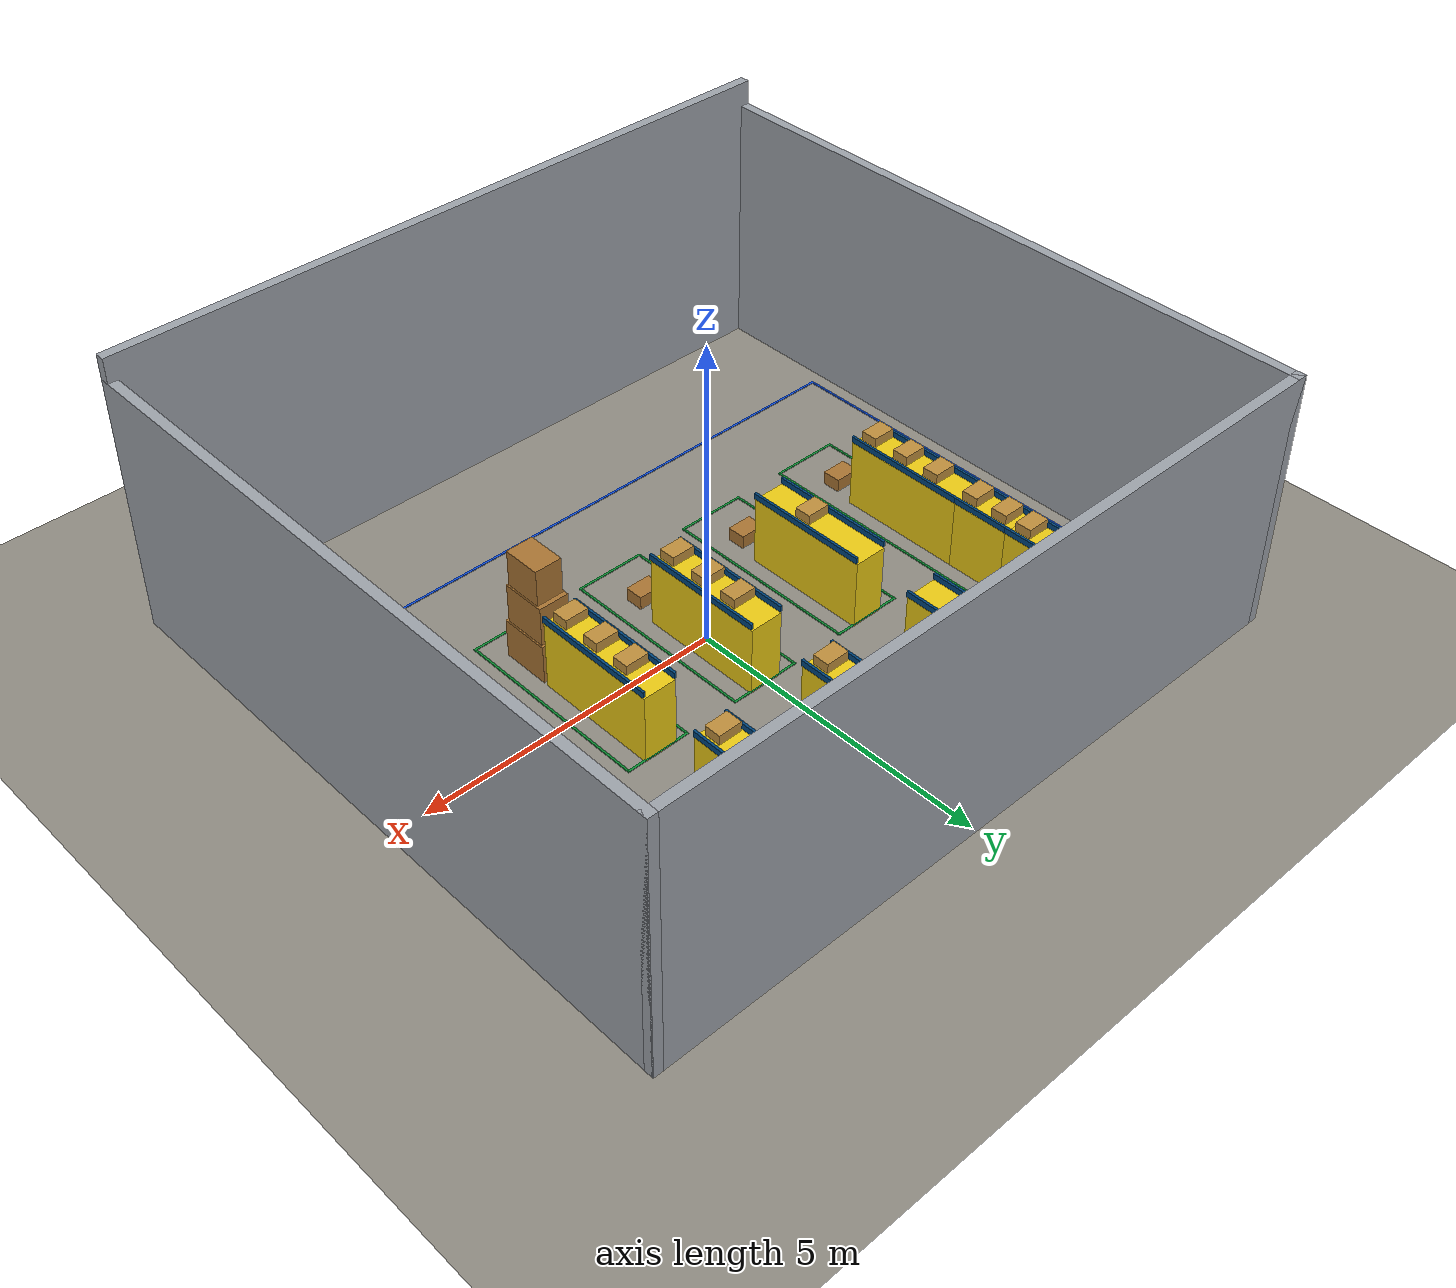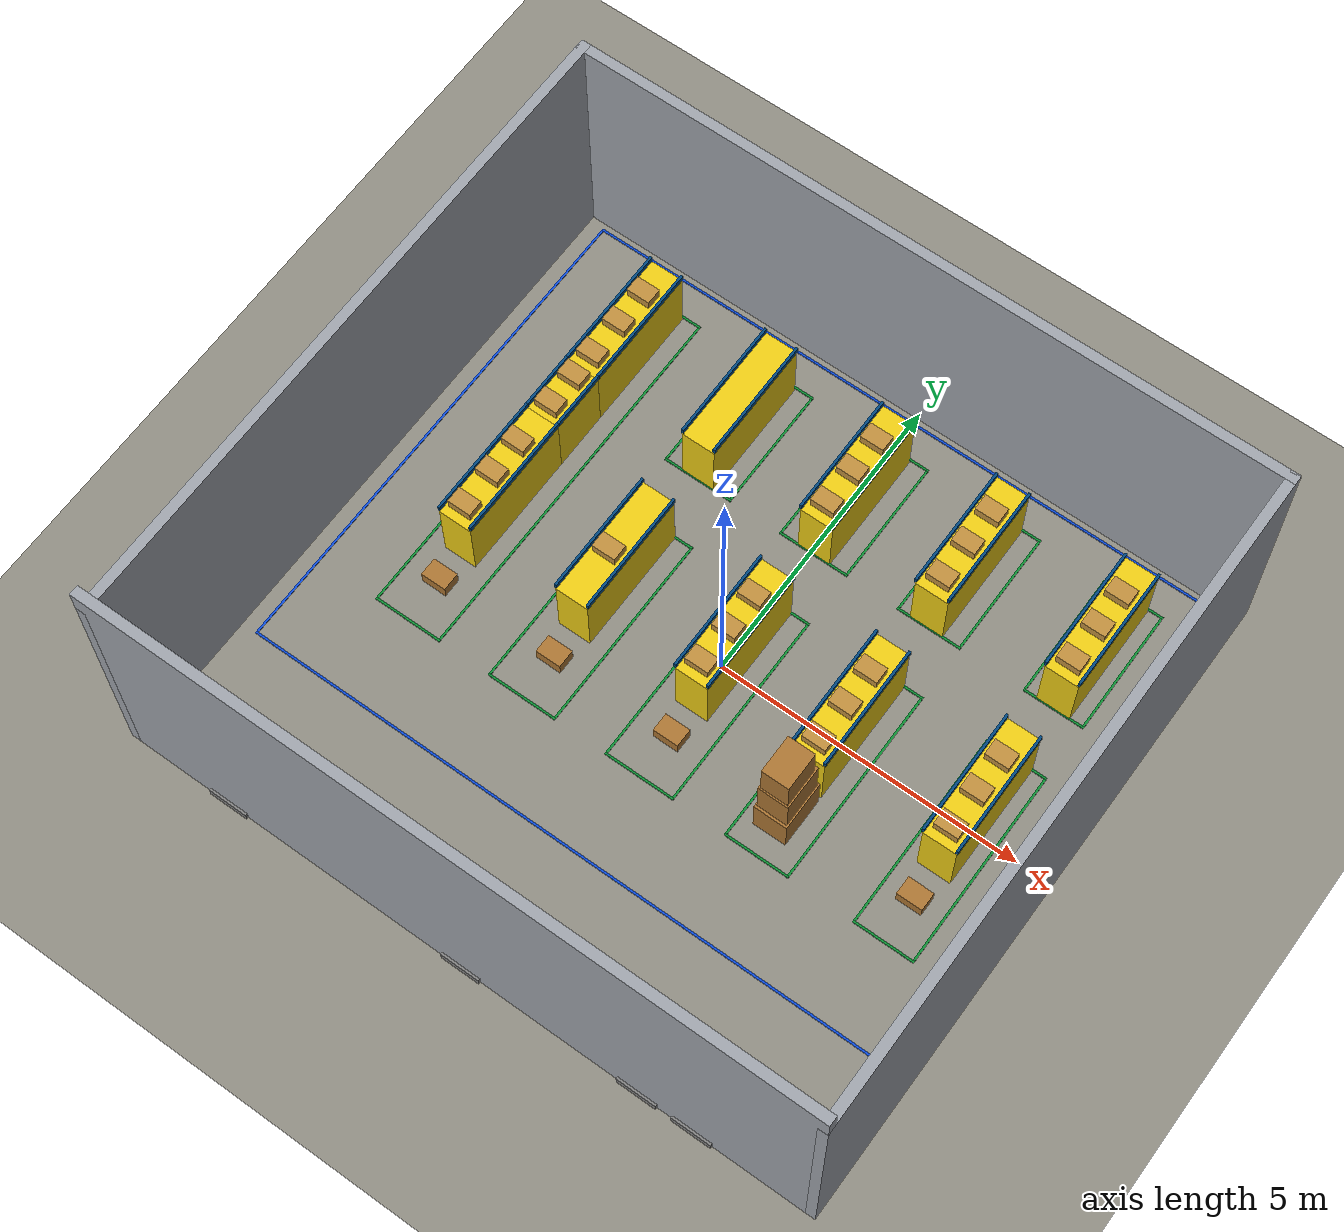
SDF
<sdf version="1.8">
 <world name="warehouse_aws_2cam">
  <physics name="default_physics" type="ode">
   <max_step_size>0.001</max_step_size>
   <real_time_factor>1.0</real_time_factor>
   <real_time_update_rate>1000</real_time_update_rate>
  </physics>
  <plugin name="gz::sim::systems::Physics" filename="gz-sim-physics-system"/>
  <plugin name="gz::sim::systems::UserCommands" filename="gz-sim-user-commands-system"/>
  <plugin name="gz::sim::systems::SceneBroadcaster" filename="gz-sim-scene-broadcaster-system"/>
  <plugin name="gz::sim::systems::Contact" filename="gz-sim-contact-system"/>
  <plugin name="gz::sim::systems::Sensors" filename="gz-sim-sensors-system">
   <render_engine>ogre2</render_engine>
  </plugin>
  <gravity>0 0 -9.81</gravity>
  <magnetic_field>6e-06 2.3e-05 -4.2e-05</magnetic_field>
  <atmosphere type="adiabatic"/>
  <scene>
   <ambient>0.58 0.58 0.58 1</ambient>
   <background>0.70 0.72 0.74 1</background>
   <shadows>true</shadows>
  </scene>
  <model name="ground_plane">
   <static>true</static>
   <link name="link">
    <collision name="collision">
     <geometry><plane><normal>0 0 1</normal><size>12.0 10.0</size></plane></geometry>
    </collision>
    <visual name="visual">
     <geometry><plane><normal>0 0 1</normal><size>12.0 10.0</size></plane></geometry>
     <material>
      <ambient>0.56 0.55 0.51 1</ambient>
      <diffuse>0.56 0.55 0.51 1</diffuse>
      <specular>0.05 0.05 0.05 1</specular>
     </material>
    </visual>
   </link>
  </model>
  <model name="warehouse_walls">
   <static>true</static>
   <link name="wall_east">
    <pose>5.5 -0.30 2.125 0 0 0</pose>
    <collision name="collision"><geometry><box><size>0.16 10.76 4.25</size></box></geometry></collision>
    <sensor name="contact" type="contact">
     <contact><collision>collision</collision></contact>
     <update_rate>60</update_rate>
    </sensor>
    <visual name="visual">
     <geometry><box><size>0.16 10.76 4.25</size></box></geometry>
     <material><ambient>0.62 0.64 0.67 1</ambient><diffuse>0.62 0.64 0.67 1</diffuse></material>
    </visual>
   </link>
   <link name="wall_west">
    <pose>-6.0 -0.30 2.125 0 0 0</pose>
    <collision name="collision"><geometry><box><size>0.16 10.76 4.25</size></box></geometry></collision>
    <sensor name="contact" type="contact">
     <contact><collision>collision</collision></contact>
     <update_rate>60</update_rate>
    </sensor>
    <visual name="visual">
     <geometry><box><size>0.16 10.76 4.25</size></box></geometry>
     <material><ambient>0.62 0.64 0.67 1</ambient><diffuse>0.62 0.64 0.67 1</diffuse></material>
    </visual>
   </link>
   <link name="wall_north">
    <pose>-0.25 5.0 2.125 0 0 0</pose>
    <collision name="collision"><geometry><box><size>11.66 0.16 4.25</size></box></geometry></collision>
    <sensor name="contact" type="contact">
     <contact><collision>collision</collision></contact>
     <update_rate>60</update_rate>
    </sensor>
    <visual name="visual">
     <geometry><box><size>11.66 0.16 4.25</size></box></geometry>
     <material><ambient>0.62 0.64 0.67 1</ambient><diffuse>0.62 0.64 0.67 1</diffuse></material>
    </visual>
   </link>
   <link name="wall_south">
    <pose>-0.25 -5.6 2.325 0 0 0</pose>
    <collision name="collision"><geometry><box><size>11.66 0.16 4.65</size></box></geometry></collision>
    <sensor name="contact" type="contact">
     <contact><collision>collision</collision></contact>
     <update_rate>60</update_rate>
    </sensor>
    <visual name="visual">
     <geometry><box><size>11.66 0.16 4.65</size></box></geometry>
     <material><ambient>0.62 0.64 0.67 1</ambient><diffuse>0.62 0.64 0.67 1</diffuse></material>
    </visual>
   </link>
   <link name="dock_left">
    <pose>-4.3 -5.69 0.075 0 0 0</pose>
    <visual name="visual">
     <geometry><box><size>0.65 0.055 0.15</size></box></geometry>
     <material><ambient>0.50 0.50 0.50 1</ambient><diffuse>0.50 0.50 0.50 1</diffuse></material>
    </visual>
   </link>
   <link name="dock_receiving">
    <pose>-0.25 -5.69 0.075 0 0 0</pose>
    <visual name="visual">
     <geometry><box><size>0.65 0.055 0.15</size></box></geometry>
     <material><ambient>0.50 0.50 0.50 1</ambient><diffuse>0.50 0.50 0.50 1</diffuse></material>
    </visual>
   </link>
   <link name="dock_shipping_a">
    <pose>2.7 -5.69 0.075 0 0 0</pose>
    <visual name="visual">
     <geometry><box><size>0.65 0.055 0.15</size></box></geometry>
     <material><ambient>0.50 0.50 0.50 1</ambient><diffuse>0.50 0.50 0.50 1</diffuse></material>
    </visual>
   </link>
   <link name="dock_shipping_b">
    <pose>3.6 -5.69 0.075 0 0 0</pose>
    <visual name="visual">
     <geometry><box><size>0.65 0.055 0.15</size></box></geometry>
     <material><ambient>0.50 0.50 0.50 1</ambient><diffuse>0.50 0.50 0.50 1</diffuse></material>
    </visual>
   </link>
  </model>
  <model name="warehouse_rack_occluders">
   <static>true</static>
   <link name="rack_R1_lower">
    <pose>-4.050 0.225 0.575 0 0 0</pose>
    <collision name="collision"><geometry><box><size>0.550 2.050 1.15</size></box></geometry></collision>
    <sensor name="contact" type="contact">
     <contact><collision>collision</collision></contact>
     <update_rate>60</update_rate>
    </sensor>
    <visual name="visual">
     <geometry><box><size>0.550 2.050 1.15</size></box></geometry>
     <material><ambient>0.93 0.80 0.08 1</ambient><diffuse>0.93 0.80 0.08 1</diffuse></material>
    </visual>
   </link>
   <link name="rail_R1_lower_west">
    <pose>-4.325 0.225 1.22 0 0 0</pose>
    <visual name="visual">
     <geometry><box><size>0.040 2.050 0.10</size></box></geometry>
     <material><ambient>0.00 0.28 0.50 1</ambient><diffuse>0.00 0.28 0.50 1</diffuse></material>
    </visual>
   </link>
   <link name="rail_R1_lower_east">
    <pose>-3.775 0.225 1.22 0 0 0</pose>
    <visual name="visual">
     <geometry><box><size>0.040 2.050 0.10</size></box></geometry>
     <material><ambient>0.00 0.28 0.50 1</ambient><diffuse>0.00 0.28 0.50 1</diffuse></material>
    </visual>
   </link>
   <link name="shelf_box_R1_lower_0">
    <pose>-4.050 -0.550 1.30 0 0 0</pose>
    <visual name="visual">
     <geometry><box><size>0.390 0.27 0.16</size></box></geometry>
     <material><ambient>0.75 0.56 0.24 1</ambient><diffuse>0.75 0.56 0.24 1</diffuse></material>
    </visual>
   </link>
   <link name="shelf_box_R1_lower_1">
    <pose>-4.050 0.080 1.30 0 0 0</pose>
    <visual name="visual">
     <geometry><box><size>0.390 0.27 0.16</size></box></geometry>
     <material><ambient>0.75 0.56 0.24 1</ambient><diffuse>0.75 0.56 0.24 1</diffuse></material>
    </visual>
   </link>
   <link name="shelf_box_R1_lower_2">
    <pose>-4.050 0.680 1.30 0 0 0</pose>
    <visual name="visual">
     <geometry><box><size>0.390 0.27 0.16</size></box></geometry>
     <material><ambient>0.75 0.56 0.24 1</ambient><diffuse>0.75 0.56 0.24 1</diffuse></material>
    </visual>
   </link>
   <link name="rack_R1_upper">
    <pose>-4.050 3.225 0.575 0 0 0</pose>
    <collision name="collision"><geometry><box><size>0.550 2.050 1.15</size></box></geometry></collision>
    <sensor name="contact" type="contact">
     <contact><collision>collision</collision></contact>
     <update_rate>60</update_rate>
    </sensor>
    <visual name="visual">
     <geometry><box><size>0.550 2.050 1.15</size></box></geometry>
     <material><ambient>0.93 0.80 0.08 1</ambient><diffuse>0.93 0.80 0.08 1</diffuse></material>
    </visual>
   </link>
   <link name="rail_R1_upper_west">
    <pose>-4.325 3.225 1.22 0 0 0</pose>
    <visual name="visual">
     <geometry><box><size>0.040 2.050 0.10</size></box></geometry>
     <material><ambient>0.00 0.28 0.50 1</ambient><diffuse>0.00 0.28 0.50 1</diffuse></material>
    </visual>
   </link>
   <link name="rail_R1_upper_east">
    <pose>-3.775 3.225 1.22 0 0 0</pose>
    <visual name="visual">
     <geometry><box><size>0.040 2.050 0.10</size></box></geometry>
     <material><ambient>0.00 0.28 0.50 1</ambient><diffuse>0.00 0.28 0.50 1</diffuse></material>
    </visual>
   </link>
   <link name="shelf_box_R1_upper_0">
    <pose>-4.050 2.450 1.30 0 0 0</pose>
    <visual name="visual">
     <geometry><box><size>0.390 0.27 0.16</size></box></geometry>
     <material><ambient>0.75 0.56 0.24 1</ambient><diffuse>0.75 0.56 0.24 1</diffuse></material>
    </visual>
   </link>
   <link name="shelf_box_R1_upper_1">
    <pose>-4.050 3.080 1.30 0 0 0</pose>
    <visual name="visual">
     <geometry><box><size>0.390 0.27 0.16</size></box></geometry>
     <material><ambient>0.75 0.56 0.24 1</ambient><diffuse>0.75 0.56 0.24 1</diffuse></material>
    </visual>
   </link>
   <link name="shelf_box_R1_upper_2">
    <pose>-4.050 3.680 1.30 0 0 0</pose>
    <visual name="visual">
     <geometry><box><size>0.390 0.27 0.16</size></box></geometry>
     <material><ambient>0.75 0.56 0.24 1</ambient><diffuse>0.75 0.56 0.24 1</diffuse></material>
    </visual>
   </link>
   <link name="rack_R1_mid">
    <pose>-4.050 1.725 0.575 0 0 0</pose>
    <collision name="collision"><geometry><box><size>0.550 0.950 1.15</size></box></geometry></collision>
    <sensor name="contact" type="contact">
     <contact><collision>collision</collision></contact>
     <update_rate>60</update_rate>
    </sensor>
    <visual name="visual">
     <geometry><box><size>0.550 0.950 1.15</size></box></geometry>
     <material><ambient>0.93 0.80 0.08 1</ambient><diffuse>0.93 0.80 0.08 1</diffuse></material>
    </visual>
   </link>
   <link name="rail_R1_mid_west">
    <pose>-4.325 1.725 1.22 0 0 0</pose>
    <visual name="visual">
     <geometry><box><size>0.040 0.950 0.10</size></box></geometry>
     <material><ambient>0.00 0.28 0.50 1</ambient><diffuse>0.00 0.28 0.50 1</diffuse></material>
    </visual>
   </link>
   <link name="rail_R1_mid_east">
    <pose>-3.775 1.725 1.22 0 0 0</pose>
    <visual name="visual">
     <geometry><box><size>0.040 0.950 0.10</size></box></geometry>
     <material><ambient>0.00 0.28 0.50 1</ambient><diffuse>0.00 0.28 0.50 1</diffuse></material>
    </visual>
   </link>
   <link name="shelf_box_R1_mid_0">
    <pose>-4.050 1.450 1.30 0 0 0</pose>
    <visual name="visual">
     <geometry><box><size>0.390 0.27 0.16</size></box></geometry>
     <material><ambient>0.75 0.56 0.24 1</ambient><diffuse>0.75 0.56 0.24 1</diffuse></material>
    </visual>
   </link>
   <link name="shelf_box_R1_mid_1">
    <pose>-4.050 2.000 1.30 0 0 0</pose>
    <visual name="visual">
     <geometry><box><size>0.390 0.27 0.16</size></box></geometry>
     <material><ambient>0.75 0.56 0.24 1</ambient><diffuse>0.75 0.56 0.24 1</diffuse></material>
    </visual>
   </link>
   <link name="rack_R2_lower">
    <pose>-2.000 0.225 0.575 0 0 0</pose>
    <collision name="collision"><geometry><box><size>0.550 2.050 1.15</size></box></geometry></collision>
    <sensor name="contact" type="contact">
     <contact><collision>collision</collision></contact>
     <update_rate>60</update_rate>
    </sensor>
    <visual name="visual">
     <geometry><box><size>0.550 2.050 1.15</size></box></geometry>
     <material><ambient>0.93 0.80 0.08 1</ambient><diffuse>0.93 0.80 0.08 1</diffuse></material>
    </visual>
   </link>
   <link name="rail_R2_lower_west">
    <pose>-2.275 0.225 1.22 0 0 0</pose>
    <visual name="visual">
     <geometry><box><size>0.040 2.050 0.10</size></box></geometry>
     <material><ambient>0.00 0.28 0.50 1</ambient><diffuse>0.00 0.28 0.50 1</diffuse></material>
    </visual>
   </link>
   <link name="rail_R2_lower_east">
    <pose>-1.725 0.225 1.22 0 0 0</pose>
    <visual name="visual">
     <geometry><box><size>0.040 2.050 0.10</size></box></geometry>
     <material><ambient>0.00 0.28 0.50 1</ambient><diffuse>0.00 0.28 0.50 1</diffuse></material>
    </visual>
   </link>
   <link name="shelf_box_R2_lower_1">
    <pose>-2.000 0.080 1.30 0 0 0</pose>
    <visual name="visual">
     <geometry><box><size>0.390 0.27 0.16</size></box></geometry>
     <material><ambient>0.75 0.56 0.24 1</ambient><diffuse>0.75 0.56 0.24 1</diffuse></material>
    </visual>
   </link>
   <link name="rack_R2_upper">
    <pose>-2.000 3.225 0.575 0 0 0</pose>
    <collision name="collision"><geometry><box><size>0.550 2.050 1.15</size></box></geometry></collision>
    <sensor name="contact" type="contact">
     <contact><collision>collision</collision></contact>
     <update_rate>60</update_rate>
    </sensor>
    <visual name="visual">
     <geometry><box><size>0.550 2.050 1.15</size></box></geometry>
     <material><ambient>0.93 0.80 0.08 1</ambient><diffuse>0.93 0.80 0.08 1</diffuse></material>
    </visual>
   </link>
   <link name="rail_R2_upper_west">
    <pose>-2.275 3.225 1.22 0 0 0</pose>
    <visual name="visual">
     <geometry><box><size>0.040 2.050 0.10</size></box></geometry>
     <material><ambient>0.00 0.28 0.50 1</ambient><diffuse>0.00 0.28 0.50 1</diffuse></material>
    </visual>
   </link>
   <link name="rail_R2_upper_east">
    <pose>-1.725 3.225 1.22 0 0 0</pose>
    <visual name="visual">
     <geometry><box><size>0.040 2.050 0.10</size></box></geometry>
     <material><ambient>0.00 0.28 0.50 1</ambient><diffuse>0.00 0.28 0.50 1</diffuse></material>
    </visual>
   </link>
   <link name="rack_R3_lower">
    <pose>0.050 0.225 0.575 0 0 0</pose>
    <collision name="collision"><geometry><box><size>0.550 2.050 1.15</size></box></geometry></collision>
    <sensor name="contact" type="contact">
     <contact><collision>collision</collision></contact>
     <update_rate>60</update_rate>
    </sensor>
    <visual name="visual">
     <geometry><box><size>0.550 2.050 1.15</size></box></geometry>
     <material><ambient>0.93 0.80 0.08 1</ambient><diffuse>0.93 0.80 0.08 1</diffuse></material>
    </visual>
   </link>
   <link name="rail_R3_lower_west">
    <pose>-0.225 0.225 1.22 0 0 0</pose>
    <visual name="visual">
     <geometry><box><size>0.040 2.050 0.10</size></box></geometry>
     <material><ambient>0.00 0.28 0.50 1</ambient><diffuse>0.00 0.28 0.50 1</diffuse></material>
    </visual>
   </link>
   <link name="rail_R3_lower_east">
    <pose>0.325 0.225 1.22 0 0 0</pose>
    <visual name="visual">
     <geometry><box><size>0.040 2.050 0.10</size></box></geometry>
     <material><ambient>0.00 0.28 0.50 1</ambient><diffuse>0.00 0.28 0.50 1</diffuse></material>
    </visual>
   </link>
   <link name="shelf_box_R3_lower_0">
    <pose>0.050 -0.550 1.30 0 0 0</pose>
    <visual name="visual">
     <geometry><box><size>0.390 0.27 0.16</size></box></geometry>
     <material><ambient>0.75 0.56 0.24 1</ambient><diffuse>0.75 0.56 0.24 1</diffuse></material>
    </visual>
   </link>
   <link name="shelf_box_R3_lower_1">
    <pose>0.050 0.080 1.30 0 0 0</pose>
    <visual name="visual">
     <geometry><box><size>0.390 0.27 0.16</size></box></geometry>
     <material><ambient>0.75 0.56 0.24 1</ambient><diffuse>0.75 0.56 0.24 1</diffuse></material>
    </visual>
   </link>
   <link name="shelf_box_R3_lower_2">
    <pose>0.050 0.680 1.30 0 0 0</pose>
    <visual name="visual">
     <geometry><box><size>0.390 0.27 0.16</size></box></geometry>
     <material><ambient>0.75 0.56 0.24 1</ambient><diffuse>0.75 0.56 0.24 1</diffuse></material>
    </visual>
   </link>
   <link name="rack_R3_upper">
    <pose>0.050 3.225 0.575 0 0 0</pose>
    <collision name="collision"><geometry><box><size>0.550 2.050 1.15</size></box></geometry></collision>
    <sensor name="contact" type="contact">
     <contact><collision>collision</collision></contact>
     <update_rate>60</update_rate>
    </sensor>
    <visual name="visual">
     <geometry><box><size>0.550 2.050 1.15</size></box></geometry>
     <material><ambient>0.93 0.80 0.08 1</ambient><diffuse>0.93 0.80 0.08 1</diffuse></material>
    </visual>
   </link>
   <link name="rail_R3_upper_west">
    <pose>-0.225 3.225 1.22 0 0 0</pose>
    <visual name="visual">
     <geometry><box><size>0.040 2.050 0.10</size></box></geometry>
     <material><ambient>0.00 0.28 0.50 1</ambient><diffuse>0.00 0.28 0.50 1</diffuse></material>
    </visual>
   </link>
   <link name="rail_R3_upper_east">
    <pose>0.325 3.225 1.22 0 0 0</pose>
    <visual name="visual">
     <geometry><box><size>0.040 2.050 0.10</size></box></geometry>
     <material><ambient>0.00 0.28 0.50 1</ambient><diffuse>0.00 0.28 0.50 1</diffuse></material>
    </visual>
   </link>
   <link name="shelf_box_R3_upper_0">
    <pose>0.050 2.450 1.30 0 0 0</pose>
    <visual name="visual">
     <geometry><box><size>0.390 0.27 0.16</size></box></geometry>
     <material><ambient>0.75 0.56 0.24 1</ambient><diffuse>0.75 0.56 0.24 1</diffuse></material>
    </visual>
   </link>
   <link name="shelf_box_R3_upper_1">
    <pose>0.050 3.080 1.30 0 0 0</pose>
    <visual name="visual">
     <geometry><box><size>0.390 0.27 0.16</size></box></geometry>
     <material><ambient>0.75 0.56 0.24 1</ambient><diffuse>0.75 0.56 0.24 1</diffuse></material>
    </visual>
   </link>
   <link name="shelf_box_R3_upper_2">
    <pose>0.050 3.680 1.30 0 0 0</pose>
    <visual name="visual">
     <geometry><box><size>0.390 0.27 0.16</size></box></geometry>
     <material><ambient>0.75 0.56 0.24 1</ambient><diffuse>0.75 0.56 0.24 1</diffuse></material>
    </visual>
   </link>
   <link name="rack_R4_lower">
    <pose>2.000 0.225 0.575 0 0 0</pose>
    <collision name="collision"><geometry><box><size>0.550 2.050 1.15</size></box></geometry></collision>
    <sensor name="contact" type="contact">
     <contact><collision>collision</collision></contact>
     <update_rate>60</update_rate>
    </sensor>
    <visual name="visual">
     <geometry><box><size>0.550 2.050 1.15</size></box></geometry>
     <material><ambient>0.93 0.80 0.08 1</ambient><diffuse>0.93 0.80 0.08 1</diffuse></material>
    </visual>
   </link>
   <link name="rail_R4_lower_west">
    <pose>1.725 0.225 1.22 0 0 0</pose>
    <visual name="visual">
     <geometry><box><size>0.040 2.050 0.10</size></box></geometry>
     <material><ambient>0.00 0.28 0.50 1</ambient><diffuse>0.00 0.28 0.50 1</diffuse></material>
    </visual>
   </link>
   <link name="rail_R4_lower_east">
    <pose>2.275 0.225 1.22 0 0 0</pose>
    <visual name="visual">
     <geometry><box><size>0.040 2.050 0.10</size></box></geometry>
     <material><ambient>0.00 0.28 0.50 1</ambient><diffuse>0.00 0.28 0.50 1</diffuse></material>
    </visual>
   </link>
   <link name="shelf_box_R4_lower_0">
    <pose>2.000 -0.550 1.30 0 0 0</pose>
    <visual name="visual">
     <geometry><box><size>0.390 0.27 0.16</size></box></geometry>
     <material><ambient>0.75 0.56 0.24 1</ambient><diffuse>0.75 0.56 0.24 1</diffuse></material>
    </visual>
   </link>
   <link name="shelf_box_R4_lower_1">
    <pose>2.000 0.080 1.30 0 0 0</pose>
    <visual name="visual">
     <geometry><box><size>0.390 0.27 0.16</size></box></geometry>
     <material><ambient>0.75 0.56 0.24 1</ambient><diffuse>0.75 0.56 0.24 1</diffuse></material>
    </visual>
   </link>
   <link name="shelf_box_R4_lower_2">
    <pose>2.000 0.680 1.30 0 0 0</pose>
    <visual name="visual">
     <geometry><box><size>0.390 0.27 0.16</size></box></geometry>
     <material><ambient>0.75 0.56 0.24 1</ambient><diffuse>0.75 0.56 0.24 1</diffuse></material>
    </visual>
   </link>
   <link name="rack_R4_upper">
    <pose>2.000 3.225 0.575 0 0 0</pose>
    <collision name="collision"><geometry><box><size>0.550 2.050 1.15</size></box></geometry></collision>
    <sensor name="contact" type="contact">
     <contact><collision>collision</collision></contact>
     <update_rate>60</update_rate>
    </sensor>
    <visual name="visual">
     <geometry><box><size>0.550 2.050 1.15</size></box></geometry>
     <material><ambient>0.93 0.80 0.08 1</ambient><diffuse>0.93 0.80 0.08 1</diffuse></material>
    </visual>
   </link>
   <link name="rail_R4_upper_west">
    <pose>1.725 3.225 1.22 0 0 0</pose>
    <visual name="visual">
     <geometry><box><size>0.040 2.050 0.10</size></box></geometry>
     <material><ambient>0.00 0.28 0.50 1</ambient><diffuse>0.00 0.28 0.50 1</diffuse></material>
    </visual>
   </link>
   <link name="rail_R4_upper_east">
    <pose>2.275 3.225 1.22 0 0 0</pose>
    <visual name="visual">
     <geometry><box><size>0.040 2.050 0.10</size></box></geometry>
     <material><ambient>0.00 0.28 0.50 1</ambient><diffuse>0.00 0.28 0.50 1</diffuse></material>
    </visual>
   </link>
   <link name="shelf_box_R4_upper_0">
    <pose>2.000 2.450 1.30 0 0 0</pose>
    <visual name="visual">
     <geometry><box><size>0.390 0.27 0.16</size></box></geometry>
     <material><ambient>0.75 0.56 0.24 1</ambient><diffuse>0.75 0.56 0.24 1</diffuse></material>
    </visual>
   </link>
   <link name="shelf_box_R4_upper_1">
    <pose>2.000 3.080 1.30 0 0 0</pose>
    <visual name="visual">
     <geometry><box><size>0.390 0.27 0.16</size></box></geometry>
     <material><ambient>0.75 0.56 0.24 1</ambient><diffuse>0.75 0.56 0.24 1</diffuse></material>
    </visual>
   </link>
   <link name="shelf_box_R4_upper_2">
    <pose>2.000 3.680 1.30 0 0 0</pose>
    <visual name="visual">
     <geometry><box><size>0.390 0.27 0.16</size></box></geometry>
     <material><ambient>0.75 0.56 0.24 1</ambient><diffuse>0.75 0.56 0.24 1</diffuse></material>
    </visual>
   </link>
   <link name="rack_R5_lower">
    <pose>4.150 0.225 0.575 0 0 0</pose>
    <collision name="collision"><geometry><box><size>0.550 2.050 1.15</size></box></geometry></collision>
    <sensor name="contact" type="contact">
     <contact><collision>collision</collision></contact>
     <update_rate>60</update_rate>
    </sensor>
    <visual name="visual">
     <geometry><box><size>0.550 2.050 1.15</size></box></geometry>
     <material><ambient>0.93 0.80 0.08 1</ambient><diffuse>0.93 0.80 0.08 1</diffuse></material>
    </visual>
   </link>
   <link name="rail_R5_lower_west">
    <pose>3.875 0.225 1.22 0 0 0</pose>
    <visual name="visual">
     <geometry><box><size>0.040 2.050 0.10</size></box></geometry>
     <material><ambient>0.00 0.28 0.50 1</ambient><diffuse>0.00 0.28 0.50 1</diffuse></material>
    </visual>
   </link>
   <link name="rail_R5_lower_east">
    <pose>4.425 0.225 1.22 0 0 0</pose>
    <visual name="visual">
     <geometry><box><size>0.040 2.050 0.10</size></box></geometry>
     <material><ambient>0.00 0.28 0.50 1</ambient><diffuse>0.00 0.28 0.50 1</diffuse></material>
    </visual>
   </link>
   <link name="shelf_box_R5_lower_0">
    <pose>4.150 -0.550 1.30 0 0 0</pose>
    <visual name="visual">
     <geometry><box><size>0.390 0.27 0.16</size></box></geometry>
     <material><ambient>0.75 0.56 0.24 1</ambient><diffuse>0.75 0.56 0.24 1</diffuse></material>
    </visual>
   </link>
   <link name="shelf_box_R5_lower_1">
    <pose>4.150 0.080 1.30 0 0 0</pose>
    <visual name="visual">
     <geometry><box><size>0.390 0.27 0.16</size></box></geometry>
     <material><ambient>0.75 0.56 0.24 1</ambient><diffuse>0.75 0.56 0.24 1</diffuse></material>
    </visual>
   </link>
   <link name="shelf_box_R5_lower_2">
    <pose>4.150 0.680 1.30 0 0 0</pose>
    <visual name="visual">
     <geometry><box><size>0.390 0.27 0.16</size></box></geometry>
     <material><ambient>0.75 0.56 0.24 1</ambient><diffuse>0.75 0.56 0.24 1</diffuse></material>
    </visual>
   </link>
   <link name="rack_R5_upper">
    <pose>4.150 3.225 0.575 0 0 0</pose>
    <collision name="collision"><geometry><box><size>0.550 2.050 1.15</size></box></geometry></collision>
    <sensor name="contact" type="contact">
     <contact><collision>collision</collision></contact>
     <update_rate>60</update_rate>
    </sensor>
    <visual name="visual">
     <geometry><box><size>0.550 2.050 1.15</size></box></geometry>
     <material><ambient>0.93 0.80 0.08 1</ambient><diffuse>0.93 0.80 0.08 1</diffuse></material>
    </visual>
   </link>
   <link name="rail_R5_upper_west">
    <pose>3.875 3.225 1.22 0 0 0</pose>
    <visual name="visual">
     <geometry><box><size>0.040 2.050 0.10</size></box></geometry>
     <material><ambient>0.00 0.28 0.50 1</ambient><diffuse>0.00 0.28 0.50 1</diffuse></material>
    </visual>
   </link>
   <link name="rail_R5_upper_east">
    <pose>4.425 3.225 1.22 0 0 0</pose>
    <visual name="visual">
     <geometry><box><size>0.040 2.050 0.10</size></box></geometry>
     <material><ambient>0.00 0.28 0.50 1</ambient><diffuse>0.00 0.28 0.50 1</diffuse></material>
    </visual>
   </link>
   <link name="shelf_box_R5_upper_0">
    <pose>4.150 2.450 1.30 0 0 0</pose>
    <visual name="visual">
     <geometry><box><size>0.390 0.27 0.16</size></box></geometry>
     <material><ambient>0.75 0.56 0.24 1</ambient><diffuse>0.75 0.56 0.24 1</diffuse></material>
    </visual>
   </link>
   <link name="shelf_box_R5_upper_1">
    <pose>4.150 3.080 1.30 0 0 0</pose>
    <visual name="visual">
     <geometry><box><size>0.390 0.27 0.16</size></box></geometry>
     <material><ambient>0.75 0.56 0.24 1</ambient><diffuse>0.75 0.56 0.24 1</diffuse></material>
    </visual>
   </link>
   <link name="shelf_box_R5_upper_2">
    <pose>4.150 3.680 1.30 0 0 0</pose>
    <visual name="visual">
     <geometry><box><size>0.390 0.27 0.16</size></box></geometry>
     <material><ambient>0.75 0.56 0.24 1</ambient><diffuse>0.75 0.56 0.24 1</diffuse></material>
    </visual>
   </link>
   <link name="low_crate_R1">
    <pose>-4.050 -1.265 0.110 0 0 0</pose>
    <collision name="collision"><geometry><box><size>0.42 0.30 0.22</size></box></geometry></collision>
    <sensor name="contact" type="contact">
     <contact><collision>collision</collision></contact>
     <update_rate>60</update_rate>
    </sensor>
    <visual name="visual">
     <geometry><box><size>0.42 0.30 0.22</size></box></geometry>
     <material><ambient>0.67 0.46 0.20 1</ambient><diffuse>0.67 0.46 0.20 1</diffuse></material>
    </visual>
   </link>
   <link name="low_crate_R2">
    <pose>-2.000 -1.265 0.110 0 0 0</pose>
    <collision name="collision"><geometry><box><size>0.42 0.30 0.22</size></box></geometry></collision>
    <sensor name="contact" type="contact">
     <contact><collision>collision</collision></contact>
     <update_rate>60</update_rate>
    </sensor>
    <visual name="visual">
     <geometry><box><size>0.42 0.30 0.22</size></box></geometry>
     <material><ambient>0.67 0.46 0.20 1</ambient><diffuse>0.67 0.46 0.20 1</diffuse></material>
    </visual>
   </link>
   <link name="low_crate_R3">
    <pose>0.050 -1.265 0.110 0 0 0</pose>
    <collision name="collision"><geometry><box><size>0.42 0.30 0.22</size></box></geometry></collision>
    <sensor name="contact" type="contact">
     <contact><collision>collision</collision></contact>
     <update_rate>60</update_rate>
    </sensor>
    <visual name="visual">
     <geometry><box><size>0.42 0.30 0.22</size></box></geometry>
     <material><ambient>0.67 0.46 0.20 1</ambient><diffuse>0.67 0.46 0.20 1</diffuse></material>
    </visual>
   </link>
   <link name="low_crate_R5">
    <pose>4.150 -1.265 0.110 0 0 0</pose>
    <collision name="collision"><geometry><box><size>0.42 0.30 0.22</size></box></geometry></collision>
    <sensor name="contact" type="contact">
     <contact><collision>collision</collision></contact>
     <update_rate>60</update_rate>
    </sensor>
    <visual name="visual">
     <geometry><box><size>0.42 0.30 0.22</size></box></geometry>
     <material><ambient>0.67 0.46 0.20 1</ambient><diffuse>0.67 0.46 0.20 1</diffuse></material>
    </visual>
   </link>
   <link name="crate_R4_occluder_0">
    <pose>2.000 -1.265 0.325 0 0 0</pose>
    <collision name="collision"><geometry><box><size>0.55 0.80 0.65</size></box></geometry></collision>
    <sensor name="contact" type="contact">
     <contact><collision>collision</collision></contact>
     <update_rate>60</update_rate>
    </sensor>
    <visual name="visual">
     <geometry><box><size>0.55 0.80 0.65</size></box></geometry>
     <material><ambient>0.67 0.46 0.20 1</ambient><diffuse>0.67 0.46 0.20 1</diffuse></material>
    </visual>
   </link>
   <link name="crate_R4_occluder_1">
    <pose>2.000 -1.265 0.975 0 0 0</pose>
    <collision name="collision"><geometry><box><size>0.50 0.72 0.65</size></box></geometry></collision>
    <sensor name="contact" type="contact">
     <contact><collision>collision</collision></contact>
     <update_rate>60</update_rate>
    </sensor>
    <visual name="visual">
     <geometry><box><size>0.50 0.72 0.65</size></box></geometry>
     <material><ambient>0.67 0.46 0.20 1</ambient><diffuse>0.67 0.46 0.20 1</diffuse></material>
    </visual>
   </link>
   <link name="crate_R4_occluder_2">
    <pose>2.000 -1.290 1.600 0 0 0</pose>
    <collision name="collision"><geometry><box><size>0.45 0.62 0.60</size></box></geometry></collision>
    <sensor name="contact" type="contact">
     <contact><collision>collision</collision></contact>
     <update_rate>60</update_rate>
    </sensor>
    <visual name="visual">
     <geometry><box><size>0.45 0.62 0.60</size></box></geometry>
     <material><ambient>0.67 0.46 0.20 1</ambient><diffuse>0.67 0.46 0.20 1</diffuse></material>
    </visual>
   </link>
  </model>
  <model name="known_driveable_boundary">
   <static>true</static>
   <link name="driveable_outer_00">
    <pose>-0.2500 -3.4500 0.035 0 0 0</pose>
    <visual name="visual">
     <geometry><box><size>10.8350 0.0350 0.014</size></box></geometry>
     <material><ambient>0.05 0.30 0.85 1</ambient><diffuse>0.05 0.30 0.85 1</diffuse></material>
    </visual>
   </link>
   <link name="driveable_outer_01">
    <pose>-0.2500 4.8000 0.035 0 0 0</pose>
    <visual name="visual">
     <geometry><box><size>10.8350 0.0350 0.014</size></box></geometry>
     <material><ambient>0.05 0.30 0.85 1</ambient><diffuse>0.05 0.30 0.85 1</diffuse></material>
    </visual>
   </link>
   <link name="driveable_outer_02">
    <pose>-5.6500 0.6750 0.035 0 0 0</pose>
    <visual name="visual">
     <geometry><box><size>0.0350 8.2150 0.014</size></box></geometry>
     <material><ambient>0.05 0.30 0.85 1</ambient><diffuse>0.05 0.30 0.85 1</diffuse></material>
    </visual>
   </link>
   <link name="driveable_outer_03">
    <pose>5.1500 0.6750 0.035 0 0 0</pose>
    <visual name="visual">
     <geometry><box><size>0.0350 8.2150 0.014</size></box></geometry>
     <material><ambient>0.05 0.30 0.85 1</ambient><diffuse>0.05 0.30 0.85 1</diffuse></material>
    </visual>
   </link>
   <link name="nogo_col0_04">
    <pose>-4.0375 -2.0300 0.035 0 0 0</pose>
    <visual name="visual">
     <geometry><box><size>1.1600 0.0350 0.014</size></box></geometry>
     <material><ambient>0.05 0.55 0.20 1</ambient><diffuse>0.05 0.55 0.20 1</diffuse></material>
    </visual>
   </link>
   <link name="nogo_col0_05">
    <pose>-4.0375 4.2800 0.035 0 0 0</pose>
    <visual name="visual">
     <geometry><box><size>1.1600 0.0350 0.014</size></box></geometry>
     <material><ambient>0.05 0.55 0.20 1</ambient><diffuse>0.05 0.55 0.20 1</diffuse></material>
    </visual>
   </link>
   <link name="nogo_col0_06">
    <pose>-4.6000 1.1250 0.035 0 0 0</pose>
    <visual name="visual">
     <geometry><box><size>0.0350 6.2750 0.014</size></box></geometry>
     <material><ambient>0.05 0.55 0.20 1</ambient><diffuse>0.05 0.55 0.20 1</diffuse></material>
    </visual>
   </link>
   <link name="nogo_col0_07">
    <pose>-3.4750 1.1250 0.035 0 0 0</pose>
    <visual name="visual">
     <geometry><box><size>0.0350 6.2750 0.014</size></box></geometry>
     <material><ambient>0.05 0.55 0.20 1</ambient><diffuse>0.05 0.55 0.20 1</diffuse></material>
    </visual>
   </link>
   <link name="nogo_col1_08">
    <pose>-2.0000 -2.0300 0.035 0 0 0</pose>
    <visual name="visual">
     <geometry><box><size>1.1850 0.0350 0.014</size></box></geometry>
     <material><ambient>0.05 0.55 0.20 1</ambient><diffuse>0.05 0.55 0.20 1</diffuse></material>
    </visual>
   </link>
   <link name="nogo_col1_09">
    <pose>-2.0000 1.2500 0.035 0 0 0</pose>
    <visual name="visual">
     <geometry><box><size>1.1850 0.0350 0.014</size></box></geometry>
     <material><ambient>0.05 0.55 0.20 1</ambient><diffuse>0.05 0.55 0.20 1</diffuse></material>
    </visual>
   </link>
   <link name="nogo_col1_10">
    <pose>-2.5750 -0.3900 0.035 0 0 0</pose>
    <visual name="visual">
     <geometry><box><size>0.0350 3.2450 0.014</size></box></geometry>
     <material><ambient>0.05 0.55 0.20 1</ambient><diffuse>0.05 0.55 0.20 1</diffuse></material>
    </visual>
   </link>
   <link name="nogo_col1_11">
    <pose>-1.4250 -0.3900 0.035 0 0 0</pose>
    <visual name="visual">
     <geometry><box><size>0.0350 3.2450 0.014</size></box></geometry>
     <material><ambient>0.05 0.55 0.20 1</ambient><diffuse>0.05 0.55 0.20 1</diffuse></material>
    </visual>
   </link>
   <link name="nogo_col2_12">
    <pose>-2.0000 2.2000 0.035 0 0 0</pose>
    <visual name="visual">
     <geometry><box><size>1.1850 0.0350 0.014</size></box></geometry>
     <material><ambient>0.05 0.55 0.20 1</ambient><diffuse>0.05 0.55 0.20 1</diffuse></material>
    </visual>
   </link>
   <link name="nogo_col2_13">
    <pose>-2.0000 4.2800 0.035 0 0 0</pose>
    <visual name="visual">
     <geometry><box><size>1.1850 0.0350 0.014</size></box></geometry>
     <material><ambient>0.05 0.55 0.20 1</ambient><diffuse>0.05 0.55 0.20 1</diffuse></material>
    </visual>
   </link>
   <link name="nogo_col2_14">
    <pose>-2.5750 3.2400 0.035 0 0 0</pose>
    <visual name="visual">
     <geometry><box><size>0.0350 2.0450 0.014</size></box></geometry>
     <material><ambient>0.05 0.55 0.20 1</ambient><diffuse>0.05 0.55 0.20 1</diffuse></material>
    </visual>
   </link>
   <link name="nogo_col2_15">
    <pose>-1.4250 3.2400 0.035 0 0 0</pose>
    <visual name="visual">
     <geometry><box><size>0.0350 2.0450 0.014</size></box></geometry>
     <material><ambient>0.05 0.55 0.20 1</ambient><diffuse>0.05 0.55 0.20 1</diffuse></material>
    </visual>
   </link>
   <link name="nogo_col3_16">
    <pose>0.0500 -2.0300 0.035 0 0 0</pose>
    <visual name="visual">
     <geometry><box><size>1.1850 0.0350 0.014</size></box></geometry>
     <material><ambient>0.05 0.55 0.20 1</ambient><diffuse>0.05 0.55 0.20 1</diffuse></material>
    </visual>
   </link>
   <link name="nogo_col3_17">
    <pose>0.0500 1.2500 0.035 0 0 0</pose>
    <visual name="visual">
     <geometry><box><size>1.1850 0.0350 0.014</size></box></geometry>
     <material><ambient>0.05 0.55 0.20 1</ambient><diffuse>0.05 0.55 0.20 1</diffuse></material>
    </visual>
   </link>
   <link name="nogo_col3_18">
    <pose>-0.5250 -0.3900 0.035 0 0 0</pose>
    <visual name="visual">
     <geometry><box><size>0.0350 3.2450 0.014</size></box></geometry>
     <material><ambient>0.05 0.55 0.20 1</ambient><diffuse>0.05 0.55 0.20 1</diffuse></material>
    </visual>
   </link>
   <link name="nogo_col3_19">
    <pose>0.6250 -0.3900 0.035 0 0 0</pose>
    <visual name="visual">
     <geometry><box><size>0.0350 3.2450 0.014</size></box></geometry>
     <material><ambient>0.05 0.55 0.20 1</ambient><diffuse>0.05 0.55 0.20 1</diffuse></material>
    </visual>
   </link>
   <link name="nogo_col4_20">
    <pose>0.0500 2.2000 0.035 0 0 0</pose>
    <visual name="visual">
     <geometry><box><size>1.1850 0.0350 0.014</size></box></geometry>
     <material><ambient>0.05 0.55 0.20 1</ambient><diffuse>0.05 0.55 0.20 1</diffuse></material>
    </visual>
   </link>
   <link name="nogo_col4_21">
    <pose>0.0500 4.2800 0.035 0 0 0</pose>
    <visual name="visual">
     <geometry><box><size>1.1850 0.0350 0.014</size></box></geometry>
     <material><ambient>0.05 0.55 0.20 1</ambient><diffuse>0.05 0.55 0.20 1</diffuse></material>
    </visual>
   </link>
   <link name="nogo_col4_22">
    <pose>-0.5250 3.2400 0.035 0 0 0</pose>
    <visual name="visual">
     <geometry><box><size>0.0350 2.0450 0.014</size></box></geometry>
     <material><ambient>0.05 0.55 0.20 1</ambient><diffuse>0.05 0.55 0.20 1</diffuse></material>
    </visual>
   </link>
   <link name="nogo_col4_23">
    <pose>0.6250 3.2400 0.035 0 0 0</pose>
    <visual name="visual">
     <geometry><box><size>0.0350 2.0450 0.014</size></box></geometry>
     <material><ambient>0.05 0.55 0.20 1</ambient><diffuse>0.05 0.55 0.20 1</diffuse></material>
    </visual>
   </link>
   <link name="nogo_col5_24">
    <pose>2.0500 -2.0300 0.035 0 0 0</pose>
    <visual name="visual">
     <geometry><box><size>1.0850 0.0350 0.014</size></box></geometry>
     <material><ambient>0.05 0.55 0.20 1</ambient><diffuse>0.05 0.55 0.20 1</diffuse></material>
    </visual>
   </link>
   <link name="nogo_col5_25">
    <pose>2.0500 1.2500 0.035 0 0 0</pose>
    <visual name="visual">
     <geometry><box><size>1.0850 0.0350 0.014</size></box></geometry>
     <material><ambient>0.05 0.55 0.20 1</ambient><diffuse>0.05 0.55 0.20 1</diffuse></material>
    </visual>
   </link>
   <link name="nogo_col5_26">
    <pose>1.5250 -0.3900 0.035 0 0 0</pose>
    <visual name="visual">
     <geometry><box><size>0.0350 3.2450 0.014</size></box></geometry>
     <material><ambient>0.05 0.55 0.20 1</ambient><diffuse>0.05 0.55 0.20 1</diffuse></material>
    </visual>
   </link>
   <link name="nogo_col5_27">
    <pose>2.5750 -0.3900 0.035 0 0 0</pose>
    <visual name="visual">
     <geometry><box><size>0.0350 3.2450 0.014</size></box></geometry>
     <material><ambient>0.05 0.55 0.20 1</ambient><diffuse>0.05 0.55 0.20 1</diffuse></material>
    </visual>
   </link>
   <link name="nogo_col6_28">
    <pose>2.0500 2.2000 0.035 0 0 0</pose>
    <visual name="visual">
     <geometry><box><size>1.0850 0.0350 0.014</size></box></geometry>
     <material><ambient>0.05 0.55 0.20 1</ambient><diffuse>0.05 0.55 0.20 1</diffuse></material>
    </visual>
   </link>
   <link name="nogo_col6_29">
    <pose>2.0500 4.2800 0.035 0 0 0</pose>
    <visual name="visual">
     <geometry><box><size>1.0850 0.0350 0.014</size></box></geometry>
     <material><ambient>0.05 0.55 0.20 1</ambient><diffuse>0.05 0.55 0.20 1</diffuse></material>
    </visual>
   </link>
   <link name="nogo_col6_30">
    <pose>1.5250 3.2400 0.035 0 0 0</pose>
    <visual name="visual">
     <geometry><box><size>0.0350 2.0450 0.014</size></box></geometry>
     <material><ambient>0.05 0.55 0.20 1</ambient><diffuse>0.05 0.55 0.20 1</diffuse></material>
    </visual>
   </link>
   <link name="nogo_col6_31">
    <pose>2.5750 3.2400 0.035 0 0 0</pose>
    <visual name="visual">
     <geometry><box><size>0.0350 2.0450 0.014</size></box></geometry>
     <material><ambient>0.05 0.55 0.20 1</ambient><diffuse>0.05 0.55 0.20 1</diffuse></material>
    </visual>
   </link>
   <link name="nogo_col7_32">
    <pose>4.1625 -2.0300 0.035 0 0 0</pose>
    <visual name="visual">
     <geometry><box><size>1.0100 0.0350 0.014</size></box></geometry>
     <material><ambient>0.05 0.55 0.20 1</ambient><diffuse>0.05 0.55 0.20 1</diffuse></material>
    </visual>
   </link>
   <link name="nogo_col7_33">
    <pose>4.1625 1.2500 0.035 0 0 0</pose>
    <visual name="visual">
     <geometry><box><size>1.0100 0.0350 0.014</size></box></geometry>
     <material><ambient>0.05 0.55 0.20 1</ambient><diffuse>0.05 0.55 0.20 1</diffuse></material>
    </visual>
   </link>
   <link name="nogo_col7_34">
    <pose>3.6750 -0.3900 0.035 0 0 0</pose>
    <visual name="visual">
     <geometry><box><size>0.0350 3.2450 0.014</size></box></geometry>
     <material><ambient>0.05 0.55 0.20 1</ambient><diffuse>0.05 0.55 0.20 1</diffuse></material>
    </visual>
   </link>
   <link name="nogo_col7_35">
    <pose>4.6500 -0.3900 0.035 0 0 0</pose>
    <visual name="visual">
     <geometry><box><size>0.0350 3.2450 0.014</size></box></geometry>
     <material><ambient>0.05 0.55 0.20 1</ambient><diffuse>0.05 0.55 0.20 1</diffuse></material>
    </visual>
   </link>
   <link name="nogo_col8_36">
    <pose>4.1625 2.2000 0.035 0 0 0</pose>
    <visual name="visual">
     <geometry><box><size>1.0100 0.0350 0.014</size></box></geometry>
     <material><ambient>0.05 0.55 0.20 1</ambient><diffuse>0.05 0.55 0.20 1</diffuse></material>
    </visual>
   </link>
   <link name="nogo_col8_37">
    <pose>4.1625 4.2800 0.035 0 0 0</pose>
    <visual name="visual">
     <geometry><box><size>1.0100 0.0350 0.014</size></box></geometry>
     <material><ambient>0.05 0.55 0.20 1</ambient><diffuse>0.05 0.55 0.20 1</diffuse></material>
    </visual>
   </link>
   <link name="nogo_col8_38">
    <pose>3.6750 3.2400 0.035 0 0 0</pose>
    <visual name="visual">
     <geometry><box><size>0.0350 2.0450 0.014</size></box></geometry>
     <material><ambient>0.05 0.55 0.20 1</ambient><diffuse>0.05 0.55 0.20 1</diffuse></material>
    </visual>
   </link>
   <link name="nogo_col8_39">
    <pose>4.6500 3.2400 0.035 0 0 0</pose>
    <visual name="visual">
     <geometry><box><size>0.0350 2.0450 0.014</size></box></geometry>
     <material><ambient>0.05 0.55 0.20 1</ambient><diffuse>0.05 0.55 0.20 1</diffuse></material>
    </visual>
   </link>
  </model>
  <include>
   <name>external_camera</name>
   <uri>model://external_camera</uri>
   <pose>0.00 -5.50 4.80 0 0.92 1.5708</pose>
  </include>
  <include>
   <name>external_camera_b</name>
   <uri>model://external_camera_b</uri>
   <pose>5.40 -0.30 4.80 0 0.92 3.14159</pose>
  </include>
  <light name="sun" type="directional">
   <pose>0 0 10 0 0 0</pose>
   <intensity>0.72</intensity>
   <direction>-0.25 0.15 -1</direction>
  </light>
  <light name="dock_overhead_light" type="point">
   <pose>0 -3.90 4.2 0 0 0</pose>
   <intensity>0.55</intensity>
   <attenuation>
    <range>12</range>
    <constant>0.45</constant>
    <linear>0.07</linear>
    <quadratic>0.012</quadratic>
   </attenuation>
  </light>
  <light name="storage_overhead_light" type="point">
   <pose>0.2 2.65 4.4 0 0 0</pose>
   <intensity>0.62</intensity>
   <attenuation>
    <range>13</range>
    <constant>0.45</constant>
    <linear>0.07</linear>
    <quadratic>0.012</quadratic>
   </attenuation>
  </light>
 </world>
</sdf>

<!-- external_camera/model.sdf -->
<sdf version="1.6">
  <model name="external_camera">
    <static>true</static>
    <pose>0 0 0 0 0 0</pose>
    <link name="link">
      <sensor name="camera" type="camera">
        <camera>
          <horizontal_fov>1.5708</horizontal_fov> <!-- 90 degrees -->
          <image>
            <width>1280</width>
            <height>720</height>
          </image>
          <clip>
            <near>0.1</near>
            <far>100</far>
          </clip>
        </camera>
        <always_on>1</always_on>
        <update_rate>5</update_rate>
        <visualize>false</visualize>
        <topic>external_camera/image_raw</topic>
      </sensor>
      <sensor name="depth_camera" type="depth_camera">
        <camera>
          <horizontal_fov>1.5708</horizontal_fov>
          <image><width>1280</width><height>720</height><format>R_FLOAT32</format></image>
          <clip><near>0.1</near><far>100</far></clip>
        </camera>
        <always_on>0</always_on>
        <update_rate>5</update_rate>
        <visualize>false</visualize>
        <topic>external_camera/depth</topic>
      </sensor>
      <sensor name="segmentation_camera" type="segmentation">
        <camera>
          <segmentation_type>semantic</segmentation_type>
          <horizontal_fov>1.5708</horizontal_fov>
          <image>
            <width>1280</width>
            <height>720</height>
          </image>
          <clip>
            <near>0.1</near>
            <far>100</far>
          </clip>
        </camera>
        <always_on>0</always_on>
        <update_rate>1</update_rate>
        <visualize>false</visualize>
        <topic>external_camera/segmentation</topic>
      </sensor>
    </link>
  </model>
</sdf>

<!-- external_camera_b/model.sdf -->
<sdf version="1.6">
  <model name="external_camera_b">
    <static>true</static>
    <pose>0 0 0 0 0 0</pose>
    <link name="link">
      <sensor name="camera" type="camera">
        <camera>
          <horizontal_fov>1.5708</horizontal_fov>
          <image>
            <width>1280</width>
            <height>720</height>
          </image>
          <clip>
            <near>0.1</near>
            <far>100</far>
          </clip>
        </camera>
        <always_on>1</always_on>
        <update_rate>5</update_rate>
        <visualize>false</visualize>
        <topic>external_camera_b/image_raw</topic>
      </sensor>
      <sensor name="depth_camera" type="depth_camera">
        <camera>
          <horizontal_fov>1.5708</horizontal_fov>
          <image><width>1280</width><height>720</height><format>R_FLOAT32</format></image>
          <clip><near>0.1</near><far>100</far></clip>
        </camera>
        <always_on>0</always_on>
        <update_rate>5</update_rate>
        <visualize>false</visualize>
        <topic>external_camera_b/depth</topic>
      </sensor>
      <sensor name="segmentation_camera" type="segmentation">
        <camera>
          <segmentation_type>semantic</segmentation_type>
          <horizontal_fov>1.5708</horizontal_fov>
          <image>
            <width>1280</width>
            <height>720</height>
          </image>
          <clip>
            <near>0.1</near>
            <far>100</far>
          </clip>
        </camera>
        <always_on>0</always_on>
        <update_rate>1</update_rate>
        <visualize>false</visualize>
        <topic>external_camera_b/segmentation</topic>
      </sensor>
    </link>
  </model>
</sdf>
